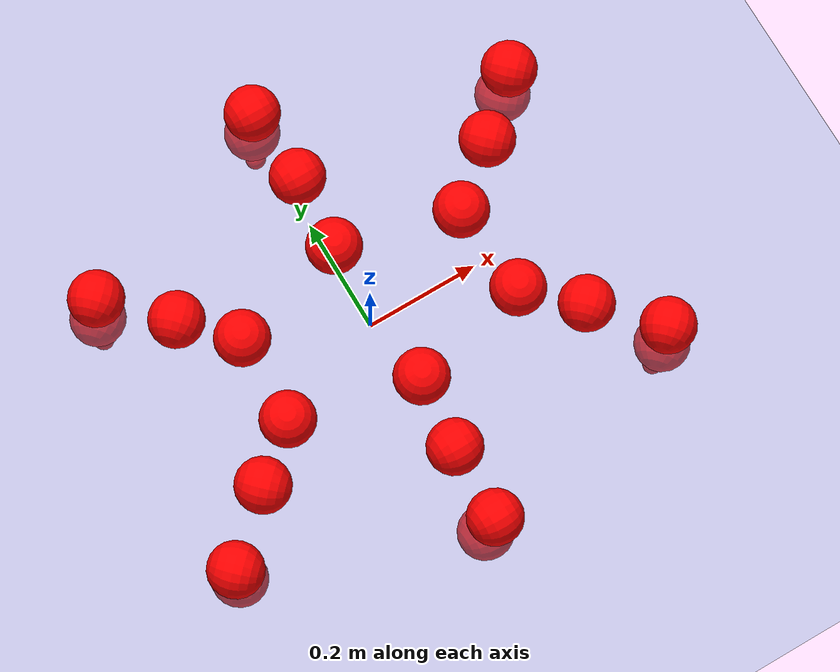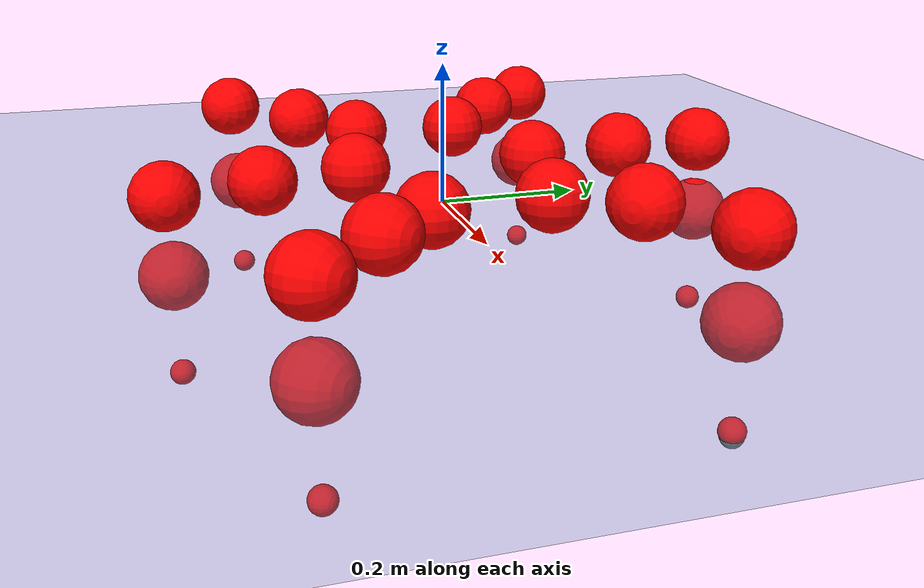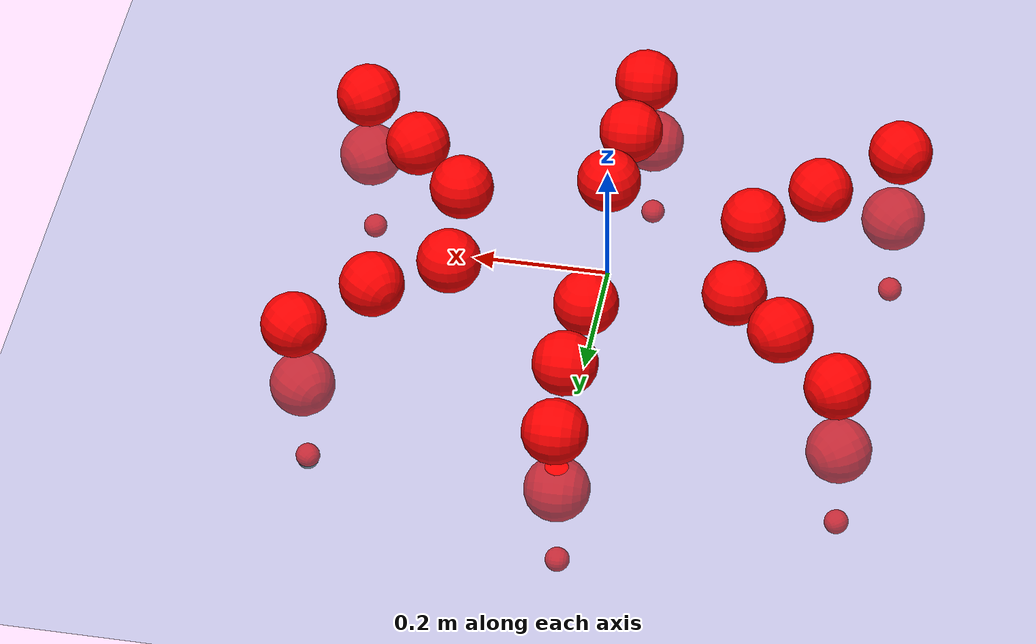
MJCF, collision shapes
<mujoco model="Golem">
  <compiler angle="radian" assetdir="assets" balanceinertia="true" inertiafromgeom="false"/>

  <option timestep="0.005" density="1.2" viscosity="2e-05"/>

  <size nkey="1"/>

  <visual>
    <quality shadowsize="8192"/>
    <map shadowclip="0.5"/>
  </visual>

  <default>
    <default class="/">
      <joint armature="0.01" damping="0.01" frictionloss="0.01"/>
      <geom contype="0" conaffinity="0" group="1" solref="-1000 -80"/>
      <site size="0.01 0.005 0.005" group="5"/>
      <general forcelimited="true" biastype="affine" gainprm="25" biasprm="0 -25 -0.5"/>
      <default class="visual">
        <geom type="mesh" group="2"/>
      </default>
      <default class="collision">
        <geom group="3"/>
      </default>
      <default class="foot">
        <geom size="0.01 0 0" condim="6" group="4" priority="1" solimp="0.015 1 0.01"/>
      </default>
      <default class="reward_collision_sphere">
        <geom group="5" rgba="1 0 0 1"/>
      </default>
    </default>
  </default>

  <asset>
    <texture type="skybox" colorspace="auto" name="//unnamed_texture_0" builtin="gradient" rgb1="0.95 0.95 0.95" rgb2="0.95 0.95 0.95" width="100" height="600"/>
    <texture type="2d" colorspace="auto" name="texplane" builtin="checker" rgb1="0.345 0.575 0.748" rgb2="0.345 0.575 0.748" markrgb="1 1 1" width="512" height="512"/>
    <material name="MatPlane" class="/" texture="texplane" texuniform="true" texrepeat="2 2" specular="0.9"/>
    <mesh name="body" class="/" file="body.stl" scale="0.001 0.001 0.001"/>
    <mesh name="coxa" class="/" file="coxa.stl" scale="0.001 0.001 0.001"/>
    <mesh name="femur" class="/" file="femur.stl" scale="0.001 0.001 0.001"/>
    <mesh name="tibia" class="/" file="tibia.stl" scale="0.001 0.001 0.001"/>
    <mesh name="tarsus" class="/" file="tarsus.stl" scale="0.001 0.001 0.001"/>
  </asset>

  <worldbody>
    <geom name="floor" class="/" size="100 100 0.125" type="plane" group="0" material="MatPlane"/>
    <light name="toplight_shadow" class="/" pos="0 0 5" dir="0.0990148 0.0990148 -0.990148" type="directional" ambient="0.04 0.04 0.04" diffuse="0.55 0.55 0.55" specular="0.12 0.12 0.12"/>
    <light name="toplight_fill" class="/" pos="0 0 5" dir="0.0990148 0.0990148 -0.990148" type="directional" castshadow="false" ambient="0.04 0.04 0.04" diffuse="0.3 0.3 0.3" specular="0.08 0.08 0.08"/>
    <body name="trunk" pos="0.00830575 0.00159251 0.00106088" quat="0.999983 0.00289244 0.00494981 -0.00114266">
      <inertial pos="0.00120487 -0.0128552 -0.0118481" quat="0.999532 0.0133531 0.0169594 0.0216869" mass="6.88994" diaginertia="0.0528743 0.028481 0.0112827"/>
      <joint name="//unnamed_joint_0" type="free"/>
      <geom name="//unnamed_geom_1" class="/" pos="0 0 0.0642682" quat="1 0 0 0" type="mesh" rgba="0.9 0.9 0.9 1" mesh="body"/>
      <site name="imu" class="/" pos="0.169603 -0.048779 0.127862" size="0.0120142"/>
      <camera name="track" class="/" pos="0 -2.46828 0" quat="0.707107 0.707107 0 0" mode="trackcom"/>
      <camera name="ego_camera" class="/" pos="0.177571 0 0.100419" quat="-0.5 -0.5 0.5 0.5"/>
      <body name="coxa_RR" pos="-0.242212 -0.11253 0.0617215" quat="0.384858 0.00446624 -0.000914607 -0.922964">
        <inertial pos="-0.00716848 -0.0046488 -0.00504673" quat="0.997862 0.00664241 -0.025909 0.0596403" mass="0.253201" diaginertia="0.040535 0.0235988 0.0091352"/>
        <joint name="coxa_joint_RR" class="/" pos="0 0 0" axis="-0.000738817 -0.00456947 -0.999989" range="-3.12827 3.39797" armature="0.00442864" damping="0" frictionloss="0.0112102"/>
        <geom name="//unnamed_geom_2" class="/" type="mesh" rgba="0.2 0.2 0.2 1" mesh="coxa"/>
        <geom name="//unnamed_geom_3" class="reward_collision_sphere" size="0.0480568" pos="-0.040978 0 0"/>
        <body name="femur_RR" pos="0.0764008 -0.010554 0.00615906" quat="0.501907 -0.501424 0.497996 0.498661">
          <inertial pos="-0.0110928 -0.00451108 -0.00144744" quat="0.998574 0.0177803 -0.0502599 -0.00267059" mass="0.359578" diaginertia="0.0485748 0.0293733 0.0103744"/>
          <joint name="femur_joint_RR" class="/" pos="0 0 0" axis="0.000726893 -0.0117802 -0.99993" range="-3.2675 3.27784" armature="0.0114922" damping="0.0646448" frictionloss="0.00933788"/>
          <geom name="//unnamed_geom_4" class="/" type="mesh" rgba="0.9 0.9 0.9 1" mesh="femur"/>
          <geom name="//unnamed_geom_5" class="reward_collision_sphere" size="0.0480568"/>
          <body name="tibia_RR" pos="-0.00358188 -0.14532 -0.00683853" quat="-0.00146269 0.999996 0.00242416 0.000776377">
            <inertial pos="0.00858943 0.000497163 0.000841093" quat="0.999735 0.00611886 0.0205808 -0.008266" mass="0.296179" diaginertia="0.0458894 0.0289658 0.00926732"/>
            <joint name="tibia_joint_RR" class="/" pos="0 0 0" axis="0.0329917 0.0345802 0.998857" range="-3.05601 3.10755" armature="0.0124607" damping="0.0168235" frictionloss="0.0129452"/>
            <geom name="//unnamed_geom_6" class="/" type="mesh" rgba="0.2 0.2 0.2 1" mesh="tibia"/>
            <geom name="//unnamed_geom_7" class="reward_collision_sphere" size="0.0480568"/>
            <body name="tarsus_RR" pos="0.129609 -0.00789051 0.000522452" quat="0.999994 -8.50834e-06 -0.00253761 0.0021827">
              <inertial pos="0.0855725 0.000818899 0.0045952" quat="0.495626 0.505174 0.496587 0.50255" mass="0.297402" diaginertia="0.041387 0.0243393 0.00889555"/>
              <joint name="tarsus_joint_RR" class="/" pos="0 0 0" axis="-0.00191111 0.00400678 0.99999" range="-3.14187 3.15379" armature="0.0119191" damping="0.0283564" frictionloss="0.0175221"/>
              <geom name="//unnamed_geom_8" class="/" type="mesh" rgba="0.9 0.9 0.9 1" mesh="tarsus"/>
              <geom name="foot_1" class="foot" size="0.0119469" pos="0.152985 0 0" quat="0 -0.707107 0 0.707107"/>
              <geom name="//unnamed_geom_10" class="reward_collision_sphere" size="0.0480568"/>
              <geom name="//unnamed_geom_11" class="reward_collision_sphere" size="0.0180213" pos="0.146838 0 0"/>
              <site name="foot_1" class="foot" pos="0.152985 0 0" quat="0 -0.707107 0 0.707107" size="0.0120142"/>
            </body>
          </body>
        </body>
      </body>
      <body name="coxa_RM" pos="0.0111282 -0.173323 0.0652907" quat="0.708121 0.000856362 0.000410416 -0.706091">
        <inertial pos="0.0107357 0.0011562 0.00160613" quat="0.99997 0.00372862 0.00348381 -0.00575946" mass="0.303174" diaginertia="0.043543 0.0229762 0.00894527"/>
        <joint name="coxa_joint_RM" class="/" pos="0 0 0" axis="0.00768705 0.00316084 -0.999965" range="-3.31994 3.10866" armature="0.00673568" damping="0" frictionloss="0.0110638"/>
        <geom name="//unnamed_geom_12" class="/" type="mesh" rgba="0.2 0.2 0.2 1" mesh="coxa"/>
        <geom name="//unnamed_geom_13" class="reward_collision_sphere" size="0.0480568" pos="-0.040978 0 0"/>
        <body name="femur_RM" pos="0.085934 -0.0123229 -0.0107452" quat="0.497957 -0.50223 0.500272 0.499532">
          <inertial pos="7.66047e-05 0.0061037 -0.00399225" quat="0.998101 0.00557078 0.0543105 -0.0285282" mass="0.377956" diaginertia="0.0588265 0.0338101 0.0121501"/>
          <joint name="femur_joint_RM" class="/" pos="0 0 0" axis="0.00339326 -0.00134678 -0.999993" stiffness="0.000336452" range="-2.88707 3.18868" armature="0.0128118" damping="0.00116672" frictionloss="0.0119623"/>
          <geom name="//unnamed_geom_14" class="/" type="mesh" rgba="0.9 0.9 0.9 1" mesh="femur"/>
          <geom name="//unnamed_geom_15" class="reward_collision_sphere" size="0.0480568"/>
          <body name="tibia_RM" pos="0.0106649 -0.131605 -0.00278744" quat="0.00550065 0.999979 0.00247845 -0.00219066">
            <inertial pos="0.00792399 -0.00104392 0.00229146" quat="0.999046 0.0371065 0.0223147 0.00561834" mass="0.343529" diaginertia="0.0465554 0.0323469 0.011793"/>
            <joint name="tibia_joint_RM" class="/" pos="0 0 0" axis="0.00867241 0.0110879 0.999901" stiffness="0.0554024" range="-3.14128 3.14937" armature="0.0122104" damping="0.0459338" frictionloss="0.0134028"/>
            <geom name="//unnamed_geom_16" class="/" type="mesh" rgba="0.2 0.2 0.2 1" mesh="tibia"/>
            <geom name="//unnamed_geom_17" class="reward_collision_sphere" size="0.0480568"/>
            <body name="tarsus_RM" pos="0.118069 -0.00323314 0.00879781" quat="0.999985 -0.00382247 0.00379752 0.000142843">
              <inertial pos="0.080534 -0.000731544 0.000567683" quat="0.513079 0.488184 0.499222 0.499204" mass="0.352575" diaginertia="0.0465349 0.0291393 0.00886863"/>
              <joint name="tarsus_joint_RM" class="/" pos="0 0 0" axis="0.0282037 -0.0412224 0.998752" range="-2.98166 2.88327" armature="0.0160967" damping="0.000885944" frictionloss="0.0196879"/>
              <geom name="//unnamed_geom_18" class="/" type="mesh" rgba="0.9 0.9 0.9 1" mesh="tarsus"/>
              <geom name="foot_2" class="foot" size="0.0107676" pos="0.152985 0 0" quat="0 -0.707107 0 0.707107"/>
              <geom name="//unnamed_geom_20" class="reward_collision_sphere" size="0.0480568"/>
              <geom name="//unnamed_geom_21" class="reward_collision_sphere" size="0.0180213" pos="0.146838 0 0"/>
              <site name="foot_2" class="foot" pos="0.152985 0 0" quat="0 -0.707107 0 0.707107" size="0.0120142"/>
            </body>
          </body>
        </body>
      </body>
      <body name="coxa_RF" pos="0.253953 -0.11204 0.0648931" quat="0.923208 0.00494732 -0.00118195 -0.384267">
        <inertial pos="-0.0110828 -0.0113681 2.79997e-05" quat="0.999976 -0.00564994 -0.00253344 -0.00315116" mass="0.349094" diaginertia="0.0494178 0.0316518 0.010579"/>
        <joint name="coxa_joint_RF" class="/" pos="0 0 0" axis="0.00670968 0.0228657 -0.999716" stiffness="0.063122" range="-3.2432 3.36761" armature="0.0145881" damping="0" frictionloss="0.0119229"/>
        <geom name="//unnamed_geom_22" class="/" type="mesh" rgba="0.2 0.2 0.2 1" mesh="coxa"/>
        <geom name="//unnamed_geom_23" class="reward_collision_sphere" size="0.0480568" pos="-0.040978 0 0"/>
        <body name="femur_RF" pos="0.0746316 0.00158044 0.00449532" quat="0.498411 -0.498974 0.504445 0.498144">
          <inertial pos="-0.000808346 0.00647283 -0.0122836" quat="0.998759 -0.00565792 0.0491541 -0.00571738" mass="0.363303" diaginertia="0.054115 0.0327457 0.0134293"/>
          <joint name="femur_joint_RF" class="/" pos="0 0 0" axis="0.0621151 -0.00974963 -0.998021" stiffness="0.00182062" range="-3.14436 3.26504" armature="0.00374177" damping="0.016801" frictionloss="0.00676613"/>
          <geom name="//unnamed_geom_24" class="/" type="mesh" rgba="0.9 0.9 0.9 1" mesh="femur"/>
          <geom name="//unnamed_geom_25" class="reward_collision_sphere" size="0.0480568"/>
          <body name="tibia_RF" pos="0.00150308 -0.138838 -0.000298781" quat="-0.00079891 0.999996 -0.00215615 0.0018316">
            <inertial pos="-0.00356333 -0.00081274 -0.00154883" quat="0.998977 0.0378399 -0.0133717 0.0208567" mass="0.392177" diaginertia="0.0524323 0.0324856 0.00950971"/>
            <joint name="tibia_joint_RF" class="/" pos="0 0 0" axis="-0.00818057 0.00119482 0.999966" stiffness="0.0337164" range="-3.13313 2.91078" armature="0.0118438" damping="0.0228464" frictionloss="0.00986555"/>
            <geom name="//unnamed_geom_26" class="/" type="mesh" rgba="0.2 0.2 0.2 1" mesh="tibia"/>
            <geom name="//unnamed_geom_27" class="reward_collision_sphere" size="0.0480568"/>
            <body name="tarsus_RF" pos="0.120468 0.00119923 0.000809826" quat="0.999981 0.00122099 0.000353608 -0.00609938">
              <inertial pos="0.0851007 0.000420919 -0.00179077" quat="0.487999 0.475887 0.517171 0.517612" mass="0.380535" diaginertia="0.0526711 0.0307395 0.0125488"/>
              <joint name="tarsus_joint_RF" class="/" pos="0 0 0" axis="-0.00641079 -0.0133295 0.999891" range="-3.12741 3.11987" armature="0.0124257" damping="0.0164876" frictionloss="0.0078821"/>
              <geom name="//unnamed_geom_28" class="/" type="mesh" rgba="0.9 0.9 0.9 1" mesh="tarsus"/>
              <geom name="foot_3" class="foot" size="0.00732424" pos="0.152985 0 0" quat="0 -0.707107 0 0.707107"/>
              <geom name="//unnamed_geom_30" class="reward_collision_sphere" size="0.0480568"/>
              <geom name="//unnamed_geom_31" class="reward_collision_sphere" size="0.0180213" pos="0.146838 0 0"/>
              <site name="foot_3" class="foot" pos="0.152985 0 0" quat="0 -0.707107 0 0.707107" size="0.0120142"/>
            </body>
          </body>
        </body>
      </body>
      <body name="coxa_LR" pos="-0.238251 0.102215 0.0587151" quat="0.384407 0.00152612 -0.00460521 0.923151">
        <inertial pos="0.000753696 -0.00139188 -0.00329633" quat="0.999972 -0.00221759 0.00295242 0.00657947" mass="0.375792" diaginertia="0.0544969 0.0290165 0.0120396"/>
        <joint name="coxa_joint_LR" class="/" pos="0 0 0" axis="0.0491951 0.0134768 -0.998698" stiffness="0.0218718" range="-3.33127 3.13366" armature="0.0148667" damping="0" frictionloss="0.0129748"/>
        <geom name="//unnamed_geom_32" class="/" type="mesh" rgba="0.2 0.2 0.2 1" mesh="coxa"/>
        <geom name="//unnamed_geom_33" class="reward_collision_sphere" size="0.0480568" pos="-0.040978 0 0"/>
        <body name="femur_LR" pos="0.0701835 0.000292473 0.0111969" quat="0.499535 -0.499407 0.499305 0.501748">
          <inertial pos="0.000144475 0.000330745 -0.00556486" quat="0.999751 -0.00732867 0.00522891 -0.0203975" mass="0.331105" diaginertia="0.044284 0.0308743 0.00935714"/>
          <joint name="femur_joint_LR" class="/" pos="0 0 0" axis="-0.000205206 -0.00435687 0.99999" stiffness="0.0396556" range="-2.92393 2.92759" armature="0.0108378" damping="0.0601198" frictionloss="0.0137792"/>
          <geom name="//unnamed_geom_34" class="/" type="mesh" rgba="0.9 0.9 0.9 1" mesh="femur"/>
          <geom name="//unnamed_geom_35" class="reward_collision_sphere" size="0.0480568"/>
          <body name="tibia_LR" pos="0.00385954 -0.137406 -0.00134295" quat="0.00108 0.999999 0.000492036 -0.000659282">
            <inertial pos="0.012667 0.00313994 0.0113049" quat="0.999996 0.000221633 -0.000629528 -0.00259363" mass="0.34627" diaginertia="0.0488091 0.0251519 0.0112337"/>
            <joint name="tibia_joint_LR" class="/" pos="0 0 0" axis="0.000335449 -0.00447484 -0.99999" stiffness="0.0355805" range="-3.3648 2.96005" armature="0.0156612" damping="0" frictionloss="0.0143315"/>
            <geom name="//unnamed_geom_36" class="/" type="mesh" rgba="0.2 0.2 0.2 1" mesh="tibia"/>
            <geom name="//unnamed_geom_37" class="reward_collision_sphere" size="0.0480568"/>
            <body name="tarsus_LR" pos="0.125181 0.00554172 -0.00283498" quat="1 -5.93668e-05 0.000608596 0.0006473">
              <inertial pos="0.0799234 0.0024026 -0.00279597" quat="0.499493 0.504464 0.498766 0.497248" mass="0.320007" diaginertia="0.0444563 0.0224743 0.00889802"/>
              <joint name="tarsus_joint_LR" class="/" pos="0 0 0" axis="0.0564679 -0.0108159 -0.998346" range="-3.12603 3.31683" armature="0.0128647" damping="0.0226127" frictionloss="0.00672938"/>
              <geom name="//unnamed_geom_38" class="/" type="mesh" rgba="0.9 0.9 0.9 1" mesh="tarsus"/>
              <geom name="foot_4" class="foot" size="0.0106566" pos="0.152985 0 0" quat="0.707107 0 -0.707107 0"/>
              <geom name="//unnamed_geom_40" class="reward_collision_sphere" size="0.0480568"/>
              <geom name="//unnamed_geom_41" class="reward_collision_sphere" size="0.0180213" pos="0.146838 0 0"/>
              <site name="foot_4" class="foot" pos="0.152985 0 0" quat="0.707107 0 -0.707107 0" size="0.0120142"/>
            </body>
          </body>
        </body>
      </body>
      <body name="coxa_LM" pos="-0.000626427 0.173028 0.0621873" quat="0.706123 -0.00138092 0.00150577 0.708086">
        <inertial pos="-0.0112077 -0.0124133 -0.00333351" quat="1 0.000848263 -0.000266806 -5.89376e-06" mass="0.341823" diaginertia="0.0452527 0.0283353 0.00997614"/>
        <joint name="coxa_joint_LM" class="/" pos="0 0 0" axis="-0.0085 -0.00301774 -0.999959" stiffness="0.0436673" range="-3.27753 3.27851" armature="0.0057322" damping="0.0378297" frictionloss="0.00801232"/>
        <geom name="//unnamed_geom_42" class="/" type="mesh" rgba="0.2 0.2 0.2 1" mesh="coxa"/>
        <geom name="//unnamed_geom_43" class="reward_collision_sphere" size="0.0480568" pos="-0.040978 0 0"/>
        <body name="femur_LM" pos="0.0918626 -0.00760542 0.00465119" quat="0.4961 -0.503511 0.502269 0.498083">
          <inertial pos="0.00758322 -0.00662075 0.000962305" quat="0.999002 -0.0311095 0.00834061 0.0309532" mass="0.335597" diaginertia="0.0410042 0.030439 0.00963774"/>
          <joint name="femur_joint_LM" class="/" pos="0 0 0" axis="0.000219834 0.0146359 0.999893" range="-3.22609 3.14054" armature="0.0194213" damping="0.043329" frictionloss="0.0124356"/>
          <geom name="//unnamed_geom_44" class="/" type="mesh" rgba="0.9 0.9 0.9 1" mesh="femur"/>
          <geom name="//unnamed_geom_45" class="reward_collision_sphere" size="0.0480568"/>
          <body name="tibia_LM" pos="0.00286402 -0.135097 0.00833881" quat="0.000215017 1 0.000101834 -0.000254672">
            <inertial pos="-0.00327212 -0.0104569 -0.00545684" quat="0.999837 0.0112869 -0.00859802 0.0111691" mass="0.364819" diaginertia="0.053054 0.0273338 0.00944377"/>
            <joint name="tibia_joint_LM" class="/" pos="0 0 0" axis="0.0142065 0.0317706 -0.999394" stiffness="0.0139333" range="-3.06446 2.97168" armature="0.0107956" damping="0.0488945" frictionloss="0.0161674"/>
            <geom name="//unnamed_geom_46" class="/" type="mesh" rgba="0.2 0.2 0.2 1" mesh="tibia"/>
            <geom name="//unnamed_geom_47" class="reward_collision_sphere" size="0.0480568"/>
            <body name="tarsus_LM" pos="0.111883 0.00368118 -0.00318642" quat="1 0.000430614 -0.000601925 0.000198215">
              <inertial pos="0.0827644 0.00223159 0.000341057" quat="0.480204 0.499973 0.522702 0.496199" mass="0.2541" diaginertia="0.0385223 0.0248971 0.0100006"/>
              <joint name="tarsus_joint_LM" class="/" pos="0 0 0" axis="-0.0157118 -0.0183912 -0.999707" range="-3.15147 3.29603" armature="0.0106901" damping="0" frictionloss="0.0118416"/>
              <geom name="//unnamed_geom_48" class="/" type="mesh" rgba="0.9 0.9 0.9 1" mesh="tarsus"/>
              <geom name="foot_5" class="foot" size="0.010466" pos="0.152985 0 0" quat="0.707107 0 -0.707107 0"/>
              <geom name="//unnamed_geom_50" class="reward_collision_sphere" size="0.0480568"/>
              <geom name="//unnamed_geom_51" class="reward_collision_sphere" size="0.0180213" pos="0.146838 0 0"/>
              <site name="foot_5" class="foot" pos="0.152985 0 0" quat="0.707107 0 -0.707107 0" size="0.0120142"/>
            </body>
          </body>
        </body>
      </body>
      <body name="coxa_LF" pos="0.241605 0.108075 0.0654388" quat="0.923734 0.000126201 -0.000317508 0.383035">
        <inertial pos="0.00168534 -0.00228799 -0.000485272" quat="0.999999 -0.000810586 0.00143725 0.000213651" mass="0.394971" diaginertia="0.053118 0.0286799 0.0103502"/>
        <joint name="coxa_joint_LF" class="/" pos="0 0 0" axis="0.0384406 -0.0436121 -0.998309" range="-3.12843 3.24116" armature="0.00965097" damping="0.0236762" frictionloss="0.0119149"/>
        <geom name="//unnamed_geom_52" class="/" type="mesh" rgba="0.2 0.2 0.2 1" mesh="coxa"/>
        <geom name="//unnamed_geom_53" class="reward_collision_sphere" size="0.0480568" pos="-0.040978 0 0"/>
        <body name="femur_LF" pos="0.0852666 -0.012514 0.0130435" quat="0.499199 -0.500355 0.499964 0.500481">
          <inertial pos="0.0100058 -0.00512638 0.0025876" quat="0.999976 0.00545004 0.00422835 -9.64987e-05" mass="0.335109" diaginertia="0.0523761 0.0344104 0.0112193"/>
          <joint name="femur_joint_LF" class="/" pos="0 0 0" axis="-0.0340989 -0.0346911 0.998816" range="-3.12759 3.35658" armature="0.01748" damping="0.00564834" frictionloss="0.011001"/>
          <geom name="//unnamed_geom_54" class="/" type="mesh" rgba="0.9 0.9 0.9 1" mesh="femur"/>
          <geom name="//unnamed_geom_55" class="reward_collision_sphere" size="0.0480568"/>
          <body name="tibia_LF" pos="0.0112786 -0.132522 -0.00523857" quat="-0.00115165 0.999999 0.000361504 -0.00056295">
            <inertial pos="-0.00316701 -0.00541731 -0.000515383" quat="0.998489 -0.0273707 0.0197436 0.0433634" mass="0.35754" diaginertia="0.0478842 0.0276836 0.00949253"/>
            <joint name="tibia_joint_LF" class="/" pos="0 0 0" axis="0.00173682 0.00775346 -0.999968" range="-3.10702 3.26128" armature="0.0197624" damping="0.0238952" frictionloss="0.0115832"/>
            <geom name="//unnamed_geom_56" class="/" type="mesh" rgba="0.2 0.2 0.2 1" mesh="tibia"/>
            <geom name="//unnamed_geom_57" class="reward_collision_sphere" size="0.0480568"/>
            <body name="tarsus_LF" pos="0.119386 -0.00550359 -0.00420959" quat="0.99998 -0.00225348 0.00551983 0.00229278">
              <inertial pos="0.0729714 0.010556 0.000874605" quat="0.496368 0.503915 0.500384 0.499304" mass="0.38995" diaginertia="0.0546784 0.0317967 0.011495"/>
              <joint name="tarsus_joint_LF" class="/" pos="0 0 0" axis="-0.0447882 0.0265448 -0.998644" range="-3.34149 3.14068" armature="0.0117379" damping="0" frictionloss="0.0111234"/>
              <geom name="//unnamed_geom_58" class="/" type="mesh" rgba="0.9 0.9 0.9 1" mesh="tarsus"/>
              <geom name="foot_6" class="foot" size="0.0160848" pos="0.152985 0 0" quat="0.707107 0 -0.707107 0"/>
              <geom name="//unnamed_geom_60" class="reward_collision_sphere" size="0.0480568"/>
              <geom name="//unnamed_geom_61" class="reward_collision_sphere" size="0.0180213" pos="0.146838 0 0"/>
              <site name="foot_6" class="foot" pos="0.152985 0 0" quat="0.707107 0 -0.707107 0" size="0.0120142"/>
            </body>
          </body>
        </body>
      </body>
    </body>
  </worldbody>

  <contact>
    <pair class="/" geom1="floor" geom2="foot_1" name="//unnamed_contact_0"/>
    <pair class="/" geom1="floor" geom2="foot_2" name="//unnamed_contact_1"/>
    <pair class="/" geom1="floor" geom2="foot_3" name="//unnamed_contact_2"/>
    <pair class="/" geom1="floor" geom2="foot_4" name="//unnamed_contact_3"/>
    <pair class="/" geom1="floor" geom2="foot_5" name="//unnamed_contact_4"/>
    <pair class="/" geom1="floor" geom2="foot_6" name="//unnamed_contact_5"/>
  </contact>

  <actuator>
    <general name="coxa_joint_RR" class="/" joint="coxa_joint_RR" forcerange="-8.88679 8.88679" gainprm="24.4081" biasprm="0 -24.4081 -0.682515"/>
    <general name="femur_joint_RR" class="/" joint="femur_joint_RR" forcerange="-8.9409 8.9409" gainprm="24.4081" biasprm="0 -24.4081 -0.682515"/>
    <general name="tibia_joint_RR" class="/" joint="tibia_joint_RR" forcerange="-9.17474 9.17474" gainprm="24.4081" biasprm="0 -24.4081 -0.682515"/>
    <general name="tarsus_joint_RR" class="/" joint="tarsus_joint_RR" forcerange="-9.59749 9.59749" gainprm="24.4081" biasprm="0 -24.4081 -0.682515"/>
    <general name="coxa_joint_RM" class="/" joint="coxa_joint_RM" forcerange="-9.7471 9.7471" gainprm="24.4081" biasprm="0 -24.4081 -0.682515"/>
    <general name="femur_joint_RM" class="/" joint="femur_joint_RM" forcerange="-11.7239 11.7239" gainprm="24.4081" biasprm="0 -24.4081 -0.682515"/>
    <general name="tibia_joint_RM" class="/" joint="tibia_joint_RM" forcerange="-8.70497 8.70497" gainprm="24.4081" biasprm="0 -24.4081 -0.682515"/>
    <general name="tarsus_joint_RM" class="/" joint="tarsus_joint_RM" forcerange="-7.56056 7.56056" gainprm="24.4081" biasprm="0 -24.4081 -0.682515"/>
    <general name="coxa_joint_RF" class="/" joint="coxa_joint_RF" forcerange="-11.9129 11.9129" gainprm="24.4081" biasprm="0 -24.4081 -0.682515"/>
    <general name="femur_joint_RF" class="/" joint="femur_joint_RF" forcerange="-11.563 11.563" gainprm="24.4081" biasprm="0 -24.4081 -0.682515"/>
    <general name="tibia_joint_RF" class="/" joint="tibia_joint_RF" forcerange="-6.1227 6.1227" gainprm="24.4081" biasprm="0 -24.4081 -0.682515"/>
    <general name="tarsus_joint_RF" class="/" joint="tarsus_joint_RF" forcerange="-7.21581 7.21581" gainprm="24.4081" biasprm="0 -24.4081 -0.682515"/>
    <general name="coxa_joint_LR" class="/" joint="coxa_joint_LR" forcerange="-8.75292 8.75292" gainprm="24.4081" biasprm="0 -24.4081 -0.682515"/>
    <general name="femur_joint_LR" class="/" joint="femur_joint_LR" forcerange="-10.7404 10.7404" gainprm="24.4081" biasprm="0 -24.4081 -0.682515"/>
    <general name="tibia_joint_LR" class="/" joint="tibia_joint_LR" forcerange="-12.5525 12.5525" gainprm="24.4081" biasprm="0 -24.4081 -0.682515"/>
    <general name="tarsus_joint_LR" class="/" joint="tarsus_joint_LR" forcerange="-4.74374 4.74374" gainprm="24.4081" biasprm="0 -24.4081 -0.682515"/>
    <general name="coxa_joint_LM" class="/" joint="coxa_joint_LM" forcerange="-6.93 6.93" gainprm="24.4081" biasprm="0 -24.4081 -0.682515"/>
    <general name="femur_joint_LM" class="/" joint="femur_joint_LM" forcerange="-9.27964 9.27964" gainprm="24.4081" biasprm="0 -24.4081 -0.682515"/>
    <general name="tibia_joint_LM" class="/" joint="tibia_joint_LM" forcerange="-8.52833 8.52833" gainprm="24.4081" biasprm="0 -24.4081 -0.682515"/>
    <general name="tarsus_joint_LM" class="/" joint="tarsus_joint_LM" forcerange="-10.1947 10.1947" gainprm="24.4081" biasprm="0 -24.4081 -0.682515"/>
    <general name="coxa_joint_LF" class="/" joint="coxa_joint_LF" forcerange="-8.43651 8.43651" gainprm="24.4081" biasprm="0 -24.4081 -0.682515"/>
    <general name="femur_joint_LF" class="/" joint="femur_joint_LF" forcerange="-8.89591 8.89591" gainprm="24.4081" biasprm="0 -24.4081 -0.682515"/>
    <general name="tibia_joint_LF" class="/" joint="tibia_joint_LF" forcerange="-7.57014 7.57014" gainprm="24.4081" biasprm="0 -24.4081 -0.682515"/>
    <general name="tarsus_joint_LF" class="/" joint="tarsus_joint_LF" forcerange="-8.64311 8.64311" gainprm="24.4081" biasprm="0 -24.4081 -0.682515"/>
  </actuator>

  <sensor>
    <gyro site="imu" name="imu_angular_velocity"/>
    <velocimeter site="imu" name="imu_linear_velocity"/>
    <framelinvel objtype="site" objname="foot_1" name="foot_1_global_linear_velocity"/>
    <framelinvel objtype="site" objname="foot_2" name="foot_2_global_linear_velocity"/>
    <framelinvel objtype="site" objname="foot_3" name="foot_3_global_linear_velocity"/>
    <framelinvel objtype="site" objname="foot_4" name="foot_4_global_linear_velocity"/>
    <framelinvel objtype="site" objname="foot_5" name="foot_5_global_linear_velocity"/>
    <framelinvel objtype="site" objname="foot_6" name="foot_6_global_linear_velocity"/>
  </sensor>

  <keyframe>
    <key name="home" qpos="0 0 0.1457 1 0 0 0 0 0 0 0 0 0 0 0 0 0 0 0 0 0 0 0 0 0 0 0 0 0 0 0"/>
  </keyframe>
</mujoco>
